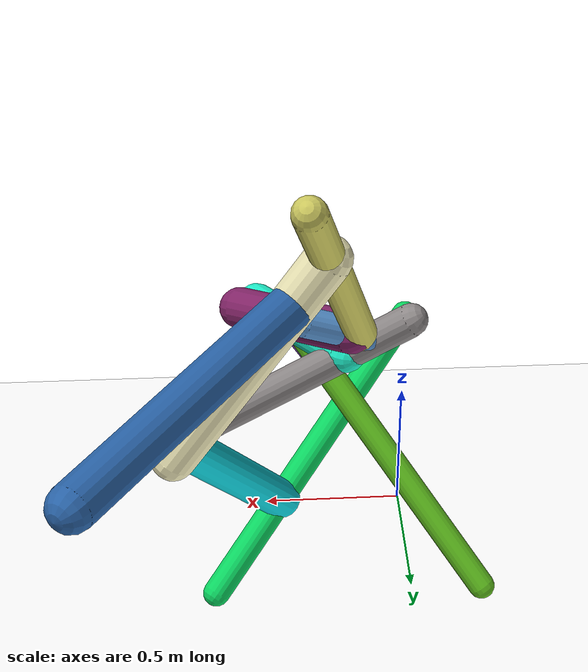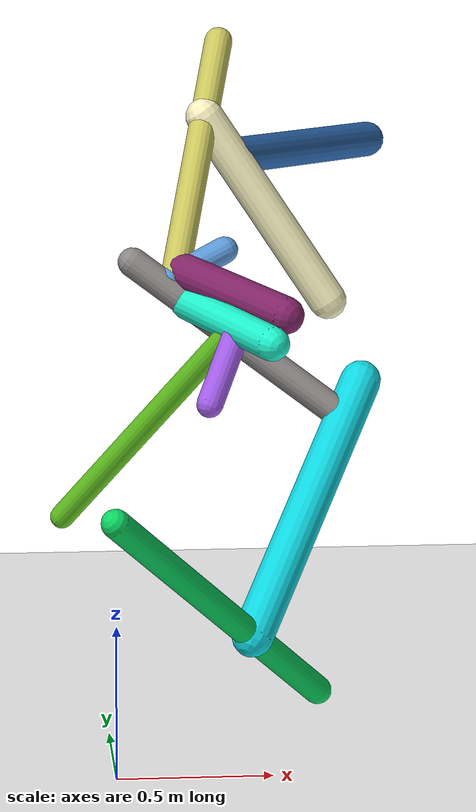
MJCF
<mujoco model="morphology">
  <option timestep="0.01"/>
  <default>
    <default class="/"/>
    <default class="0/"/>
    <default class="0/1/"/>
    <default class="0/1/2/"/>
    <default class="0/1/2/3/"/>
    <default class="0/1/2/3/4/"/>
    <default class="0/1/2/3/5/"/>
    <default class="0/1/2/6/"/>
    <default class="0/1/2/6/7/"/>
    <default class="0/1/2/6/7/8/"/>
    <default class="0/1/2/6/7/8/9/"/>
    <default class="0/1/2/6/10/"/>
  </default>
  <asset>
    <texture name="texplane" type="2d" builtin="checker" rgb1="0.10000000000000001 0.20000000000000001 0.29999999999999999" rgb2="0.20000000000000001 0.29999999999999999 0.40000000000000002" width="300" height="300"/>
    <material name="MatPlane" class="/" texture="texplane" texrepeat="20 20" specular="1" shininess="1" reflectance="0.5"/>
  </asset>
  <worldbody>
    <light name="//unnamed_light_0" class="/" directional="true" pos="0 0 1.5" dir="0 0 -1.3" cutoff="100" exponent="1" diffuse="1 1 1" specular="0.10000000000000001 0.10000000000000001 0.10000000000000001"/>
    <geom name="ground" class="/" type="plane" size="15 15 0.5" material="MatPlane" rgba="1 1 1 1"/>
    <site name="body" class="/" size="9.9999999999999995e-07 9.9999999999999995e-07 9.9999999999999995e-07" pos="0 0 0.83655921220779417"/>
    <body pos="0 0 0.83655921220779417" name="0/">
      <freejoint name="0/"/>
      <geom name="0/geom" class="0/" type="capsule" contype="1" conaffinity="1" condim="3" size="0.047397535181319519" rgba="0.041546236217053889 0.84627659760958229 0.38329565203604887 1" friction="0.59999999999999998 0.10000000000000001 0.10000000000000001" fromto="0 0 0 0.70346555317409765 0.61712650287476634 -0.73655920784385553"/>
      <site name="0/end0" class="0/" size="0.0050000000000000001" pos="0.70346555317409765 0.61712650287476634 -0.73655920784385553"/>
      <site name="0/attach1" class="0/" size="9.9999999999999995e-07 9.9999999999999995e-07 9.9999999999999995e-07" pos="0.46715083636388183 0.40981560598023581 -0.48912736156480924"/>
      <body pos="0.46715083636388183 0.40981560598023581 -0.48912736156480924" name="0/1/">
        <joint name="0/1/joint/" class="0/" type="hinge" axis="0 1 0" limited="true" range="-39.675804501366571 39.675804501366571"/>
        <geom name="0/1/geom" class="0/1/" type="capsule" contype="1" conaffinity="1" condim="3" size="0.068750299294387474" rgba="0.058146341084437947 0.8466576137776064 0.88900368924407958 1" friction="0.59999999999999998 0.10000000000000001 0.10000000000000001" fromto="0 0 0 0.41412910155825222 0.5506853627336552 0.73739502211015617"/>
        <site name="0/1/end1" class="0/1/" size="0.0050000000000000001" pos="0.41412910155825222 0.5506853627336552 0.73739502211015617"/>
        <site name="0/1/attach2" class="0/1/" size="9.9999999999999995e-07 9.9999999999999995e-07 9.9999999999999995e-07" pos="0.35214528893902286 0.46826280849296043 0.62702713271323285"/>
        <body pos="0.35214528893902286 0.46826280849296043 0.62702713271323285" name="0/1/2/">
          <joint name="0/1/2/joint/" class="0/1/" type="hinge" axis="5.5511151231257827e-17 -0.80122965069920438 0.59835695603914496" limited="true" range="-67.019012700091736 67.019012700091736"/>
          <geom name="0/1/2/geom" class="0/1/2/" type="capsule" contype="1" conaffinity="1" condim="3" size="0.049953463258747957" rgba="0.55822811317566323 0.53770303477732739 0.53761960755347782 1" friction="0.59999999999999998 0.10000000000000001 0.10000000000000001" fromto="0 0 0 -0.70605856255944399 0.13804543953178361 0.51844335930852847"/>
          <site name="0/1/2/end2" class="0/1/2/" size="0.0050000000000000001" pos="-0.70605856255944399 0.13804543953178361 0.51844335930852847"/>
          <site name="0/1/2/attach3" class="0/1/2/" size="9.9999999999999995e-07 9.9999999999999995e-07 9.9999999999999995e-07" pos="-0.52199620579607331 0.10205838365847388 0.38329039661839365"/>
          <body pos="-0.52199620579607331 0.10205838365847388 0.38329039661839365" name="0/1/2/3/">
            <joint name="0/1/2/3/joint/" class="0/1/2/" type="hinge" axis="-0.60501376479701663 -0.20486926377274495 -0.76940686841706407" limited="true" range="-40.324332022080164 40.324332022080164"/>
            <geom name="0/1/2/3/geom" class="0/1/2/3/" type="capsule" contype="1" conaffinity="1" condim="3" size="0.058102674100088389" rgba="0.11740909302465485 0.95688769439398935 0.80796683775662714 1" friction="0.59999999999999998 0.10000000000000001 0.10000000000000001" fromto="0 0 0 0.2491459497146562 -0.39889610079266519 -0.067364436544194994"/>
            <site name="0/1/2/3/end3" class="0/1/2/3/" size="0.0050000000000000001" pos="0.2491459497146562 -0.39889610079266519 -0.067364436544194994"/>
            <site name="0/1/2/3/attach4" class="0/1/2/3/" size="9.9999999999999995e-07 9.9999999999999995e-07 9.9999999999999995e-07" pos="0.15081453557079699 -0.24146220418572875 -0.040777448812781364"/>
            <body pos="0.15081453557079699 -0.24146220418572875 -0.040777448812781364" name="0/1/2/3/4/">
              <joint name="0/1/2/3/4/joint/" class="0/1/2/3/" type="hinge" axis="1.3877787807814457e-17 -0.16651931941489573 0.98603819209075261" limited="true" range="-32.187240135546531 32.187240135546531"/>
              <geom name="0/1/2/3/4/geom" class="0/1/2/3/4/" type="capsule" contype="1" conaffinity="1" condim="3" size="0.044741152982059329" rgba="0.63841937137015015 0.36621451805749394 0.91576794287323737 1" friction="0.59999999999999998 0.10000000000000001 0.10000000000000001" fromto="0 0 0 -0.10430823714745308 -0.11765028634362418 -0.23381842194666203"/>
              <site name="0/1/2/3/4/end4" class="0/1/2/3/4/" size="0.0050000000000000001" pos="-0.10430823714745308 -0.11765028634362418 -0.23381842194666203"/>
            </body>
            <site name="0/1/2/3/attach5" class="0/1/2/3/" size="9.9999999999999995e-07 9.9999999999999995e-07 9.9999999999999995e-07" pos="0.14285309756635814 -0.22871551261674927 -0.038624823871999461"/>
            <body pos="0.14285309756635814 -0.22871551261674927 -0.038624823871999461" name="0/1/2/3/5/">
              <geom name="0/1/2/3/5/geom" class="0/1/2/3/5/" type="capsule" contype="1" conaffinity="1" condim="3" size="0.041142318063935687" rgba="0.38543170212370581 0.76575136687900158 0.12045880802036435 1" friction="0.59999999999999998 0.10000000000000001 0.10000000000000001" fromto="0 0 0 -0.56623620416542164 0.40935078491983767 -0.73679878889625661"/>
              <site name="0/1/2/3/5/end5" class="0/1/2/3/5/" size="0.0050000000000000001" pos="-0.56623620416542164 0.40935078491983767 -0.73679878889625661"/>
            </body>
          </body>
          <site name="0/1/2/attach6" class="0/1/2/" size="9.9999999999999995e-07 9.9999999999999995e-07 9.9999999999999995e-07" pos="-0.60865084734576125 0.11900071495296718 0.44691900456536449"/>
          <body pos="-0.60865084734576125 0.11900071495296718 0.44691900456536449" name="0/1/2/6/">
            <geom name="0/1/2/6/geom" class="0/1/2/6/" type="capsule" contype="1" conaffinity="1" condim="3" size="0.046038456192792801" rgba="0.36346147987230593 0.60699608599231925 0.85555737292048906 1" friction="0.59999999999999998 0.10000000000000001 0.10000000000000001" fromto="0 0 0 0.21610113524523378 0.057537735486802633 0.10218680101994804"/>
            <site name="0/1/2/6/end6" class="0/1/2/6/" size="0.0050000000000000001" pos="0.21610113524523378 0.057537735486802633 0.10218680101994804"/>
            <site name="0/1/2/6/attach7" class="0/1/2/6/" size="9.9999999999999995e-07 9.9999999999999995e-07 9.9999999999999995e-07" pos="0.044429281088208442 0.011829462257202657 0.021009080312641395"/>
            <body pos="0.044429281088208442 0.011829462257202657 0.021009080312641395" name="0/1/2/6/7/">
              <joint name="0/1/2/6/7/joint/" class="0/1/2/6/" type="hinge" axis="0 -0.87136536386327612 0.4906346936972763" limited="true" range="-45.132277085378739 45.132277085378739"/>
              <geom name="0/1/2/6/7/geom" class="0/1/2/6/7/" type="capsule" contype="1" conaffinity="1" condim="3" size="0.04824299181991476" rgba="0.80223662893596048 0.78489610970853763 0.37027545341202139 1" friction="0.59999999999999998 0.10000000000000001 0.10000000000000001" fromto="0 0 0 0.19055773717071578 0.55036911229406416 0.73211350853582369"/>
              <site name="0/1/2/6/7/end7" class="0/1/2/6/7/" size="0.0050000000000000001" pos="0.19055773717071578 0.55036911229406416 0.73211350853582369"/>
              <site name="0/1/2/6/7/attach8" class="0/1/2/6/7/" size="9.9999999999999995e-07 9.9999999999999995e-07 9.9999999999999995e-07" pos="0.12819351951042193 0.37024869513220249 0.49251323369909034"/>
              <body pos="0.12819351951042193 0.37024869513220249 0.49251323369909034" name="0/1/2/6/7/8/">
                <joint name="0/1/2/6/7/8/joint/" class="0/1/2/6/7/" type="hinge" axis="-5.5511151231257827e-17 -0.79932660447099113 0.60089681259337335" limited="true" range="-31.751188726969595 31.751188726969595"/>
                <geom name="0/1/2/6/7/8/geom" class="0/1/2/6/7/8/" type="capsule" contype="1" conaffinity="1" condim="3" size="0.065178428431527269" rgba="0.98110961897627014 0.95502110510567861 0.75978245699979596 1" friction="0.59999999999999998 0.10000000000000001 0.10000000000000001" fromto="0 0 0 0.42761884300797393 -0.014007667468524776 -0.64616200473028074"/>
                <site name="0/1/2/6/7/8/end8" class="0/1/2/6/7/8/" size="0.0050000000000000001" pos="0.42761884300797393 -0.014007667468524776 -0.64616200473028074"/>
                <site name="0/1/2/6/7/8/attach9" class="0/1/2/6/7/8/" size="9.9999999999999995e-07 9.9999999999999995e-07 9.9999999999999995e-07" pos="0.091328340244993839 -0.0029916759785543565 -0.13800351501417343"/>
                <body pos="0.091328340244993839 -0.0029916759785543565 -0.13800351501417343" name="0/1/2/6/7/8/9/">
                  <joint name="0/1/2/6/7/8/9/joint/" class="0/1/2/6/7/8/" type="hinge" axis="-1.6653345369377348e-16 -0.99976510932389784 0.021673167248340564" limited="true" range="-50.922260810637709 50.922260810637709"/>
                  <geom name="0/1/2/6/7/8/9/geom" class="0/1/2/6/7/8/9/" type="capsule" contype="1" conaffinity="1" condim="3" size="0.063076887211417479" rgba="0.16328245559857502 0.3920705260512839 0.66077929924551992 1" friction="0.59999999999999998 0.10000000000000001 0.10000000000000001" fromto="0 0 0 0.55586390925876361 0.74860656445550244 -0.051198201920795272"/>
                  <site name="0/1/2/6/7/8/9/end9" class="0/1/2/6/7/8/9/" size="0.0050000000000000001" pos="0.55586390925876361 0.74860656445550244 -0.051198201920795272"/>
                </body>
              </body>
            </body>
            <site name="0/1/2/6/attach10" class="0/1/2/6/" size="9.9999999999999995e-07 9.9999999999999995e-07 9.9999999999999995e-07" pos="0.075404390700773205 0.020076701039821582 0.035656145257294651"/>
            <body pos="0.075404390700773205 0.020076701039821582 0.035656145257294651" name="0/1/2/6/10/">
              <joint name="0/1/2/6/10/joint/" class="0/1/2/6/" type="hinge" axis="-0.47696621200811951 0.43122944497595816 0.76586186638868003" limited="true" range="-66.655314256205799 66.655314256205799"/>
              <geom name="0/1/2/6/10/geom" class="0/1/2/6/10/" type="capsule" contype="1" conaffinity="1" condim="3" size="0.063880420025243398" rgba="0.51406464294648313 0.14134163489893647 0.4110282127744499 1" friction="0.59999999999999998 0.10000000000000001 0.10000000000000001" fromto="0 0 0 0.31552965237875674 -0.29812359150217027 -0.098256691393540985"/>
              <site name="0/1/2/6/10/end10" class="0/1/2/6/10/" size="0.0050000000000000001" pos="0.31552965237875674 -0.29812359150217027 -0.098256691393540985"/>
            </body>
          </body>
        </body>
      </body>
      <camera name="0/iso" class="0/" mode="trackcom" pos="-2.2999999999999998 -2.2999999999999998 1" xyaxes="0.45000000000000001 -0.45000000000000001 0 0.29999999999999999 0.14999999999999999 0.93999999999999995"/>
    </body>
  </worldbody>
  <actuator>
    <motor name="0/1/motor" class="0/1/" ctrllimited="true" ctrlrange="-1 1" gear="90" joint="0/1/joint/"/>
    <motor name="0/1/2/motor" class="0/1/2/" ctrllimited="true" ctrlrange="-1 1" gear="65" joint="0/1/2/joint/"/>
    <motor name="0/1/2/3/motor" class="0/1/2/3/" ctrllimited="true" ctrlrange="-1 1" gear="73" joint="0/1/2/3/joint/"/>
    <motor name="0/1/2/3/4/motor" class="0/1/2/3/4/" ctrllimited="true" ctrlrange="-1 1" gear="76" joint="0/1/2/3/4/joint/"/>
    <motor name="0/1/2/6/7/motor" class="0/1/2/6/7/" ctrllimited="true" ctrlrange="-1 1" gear="86" joint="0/1/2/6/7/joint/"/>
    <motor name="0/1/2/6/7/8/motor" class="0/1/2/6/7/8/" ctrllimited="true" ctrlrange="-1 1" gear="68" joint="0/1/2/6/7/8/joint/"/>
    <motor name="0/1/2/6/7/8/9/motor" class="0/1/2/6/7/8/9/" ctrllimited="true" ctrlrange="-1 1" gear="66" joint="0/1/2/6/7/8/9/joint/"/>
    <motor name="0/1/2/6/10/motor" class="0/1/2/6/10/" ctrllimited="true" ctrlrange="-1 1" gear="87" joint="0/1/2/6/10/joint/"/>
  </actuator>
  <sensor>
    <subtreelinvel name="velocity" body="0/"/>
  </sensor>
</mujoco>
